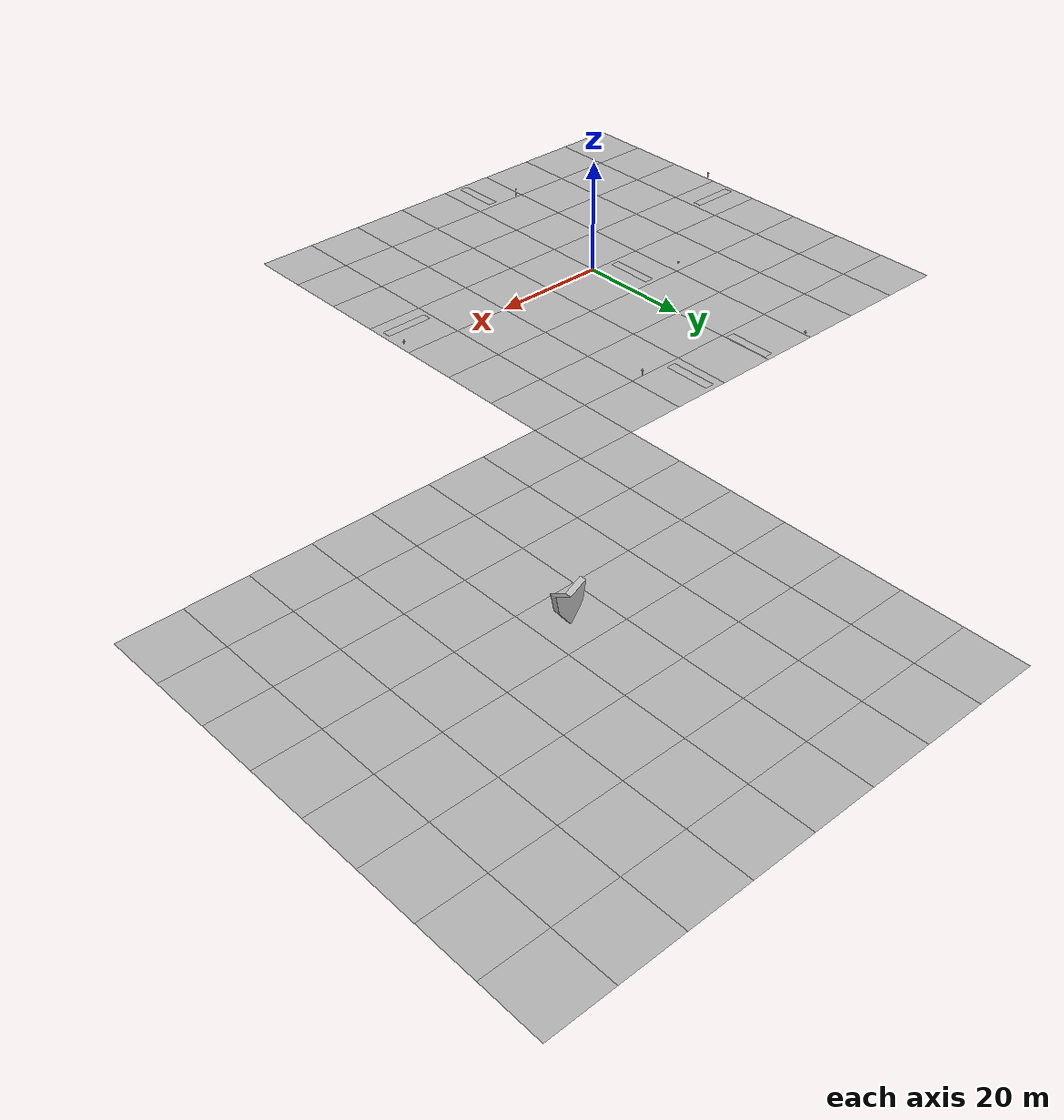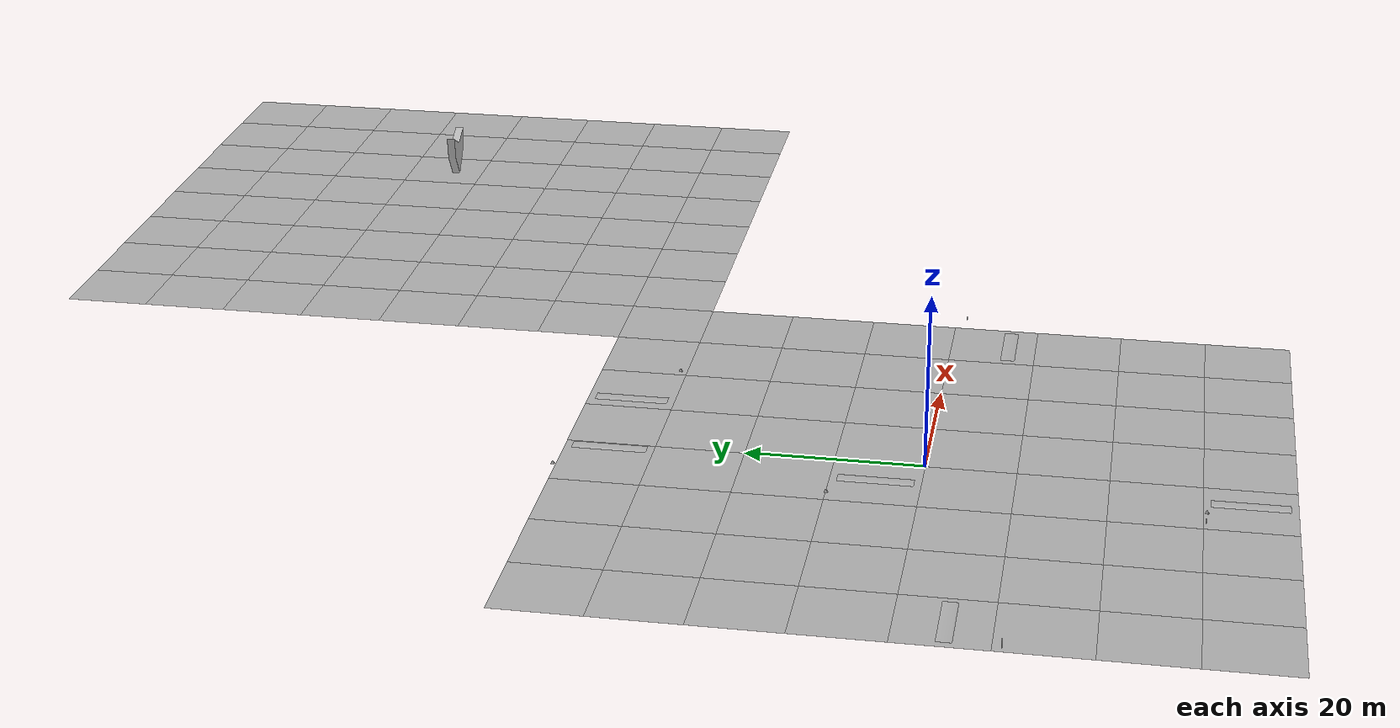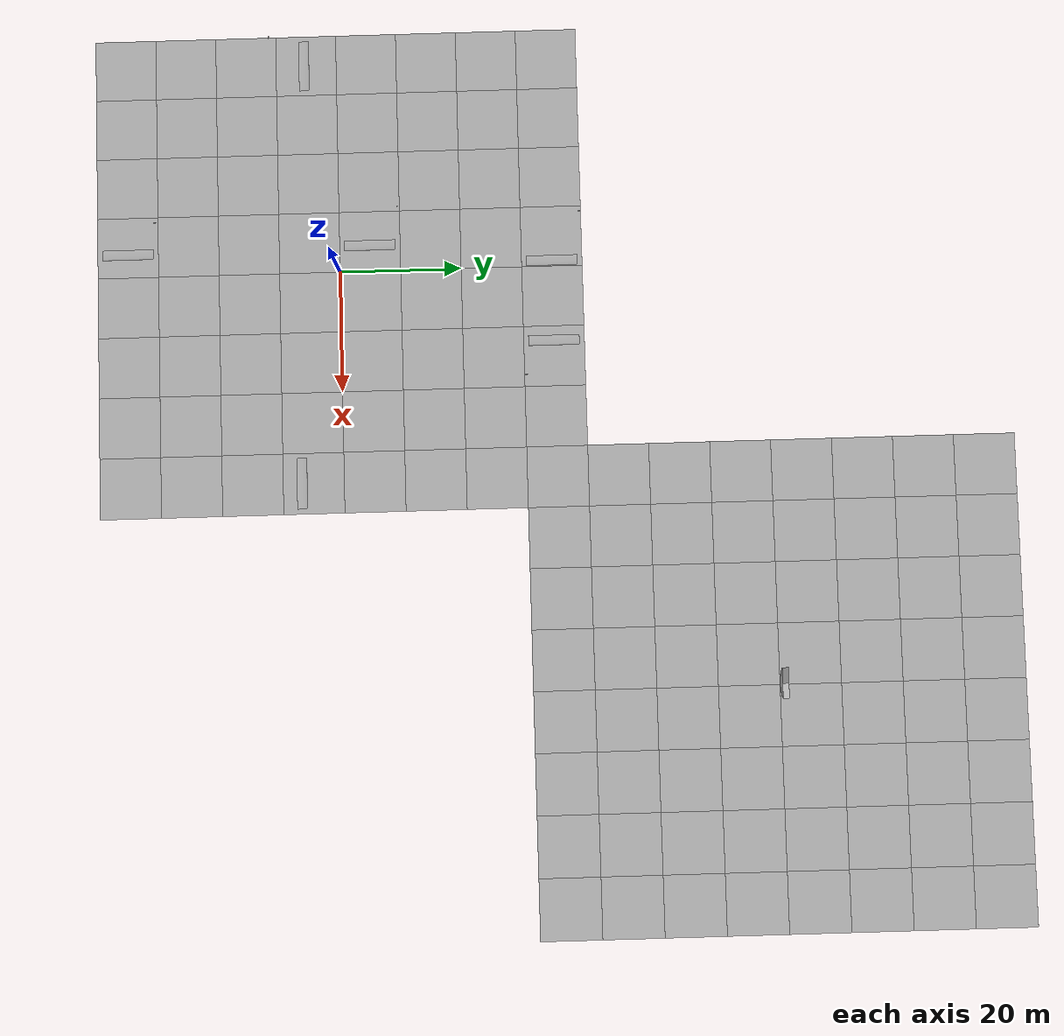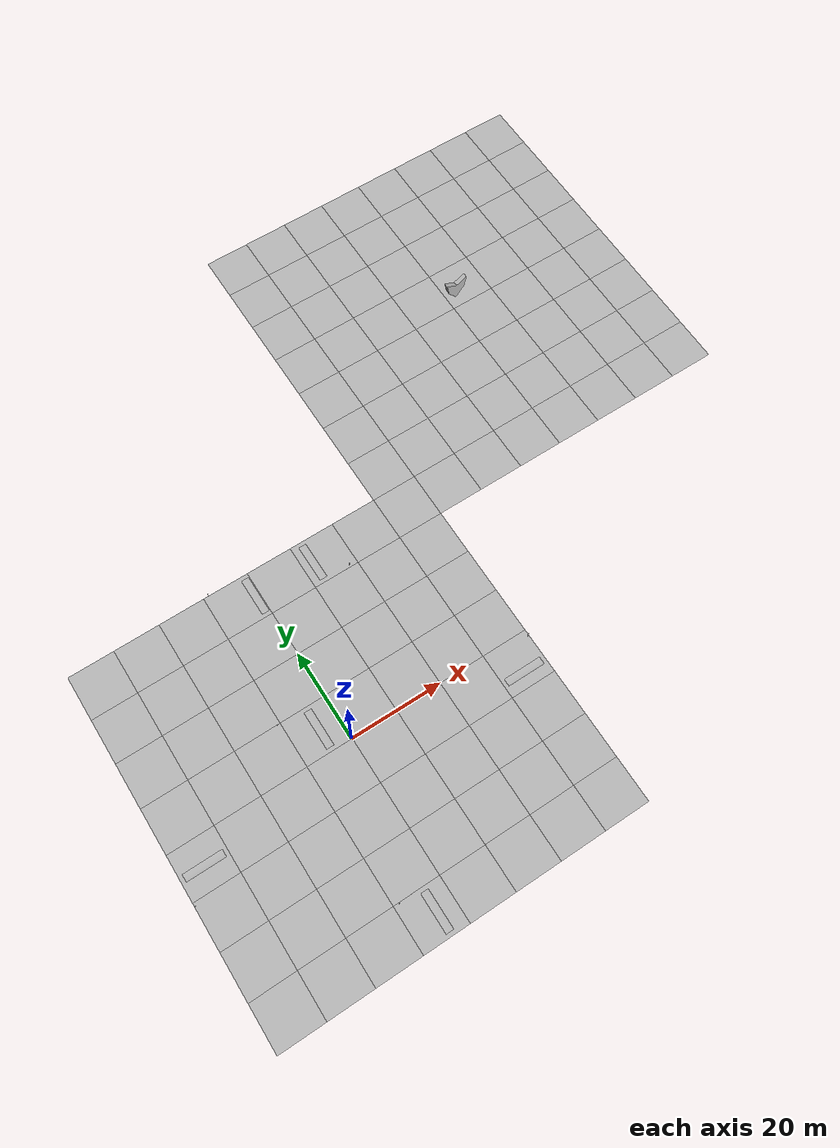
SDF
<sdf version="1.4">
 <world name="road test">
  <scene>
   <ambient>120 120 120 255</ambient>
   <sky><clouds><speed>12</speed></clouds><time>10:00</time></sky>
  </scene>
  <include>
   <name>Road Intersection1</name>
   <uri>model://road_intersection</uri>
   <pose>-35 -35 0 0 0 1.57</pose>
  </include>
  <include><name>Road Straight2</name><uri>model://road_straight</uri><pose>-35 -25 0 0 0 1.57</pose></include>
  <include><name>Road Straight3</name><uri>model://road_straight</uri><pose>-35 -15 0 0 0 1.57</pose></include>
  <include><name>Road Straight4</name><uri>model://road_straight</uri><pose>-35 -5 0 0 0 1.57</pose></include>
  <include>
   <name>Road Intersection2</name>
   <uri>model://road_intersection</uri>
   <pose>-35 5 0 0 0 1.57</pose>
  </include>
  <include><name>Road Straight5</name><uri>model://road_straight</uri><pose>-35 15 0 0 0 1.57</pose></include>
  <include><name>Road Straight6</name><uri>model://road_straight</uri><pose>-35 25 0 0 0 1.57</pose></include>
  <include>
   <name>Road Intersection3</name>
   <uri>model://road_intersection</uri>
   <pose>-35 35 0 0 0 1.57</pose>
  </include>
  <include><name>Road Straight7</name><uri>model://road_straight</uri><pose>-25 -35 0 0 0 0</pose></include>
  <include><name>Road Straight8</name><uri>model://road_straight</uri><pose>-25 5 0 0 0 0</pose></include>
  <include><name>Road Straight9</name><uri>model://road_straight</uri><pose>-25 35 0 0 0 0</pose></include>
  <include><name>Road Straight10</name><uri>model://road_straight</uri><pose>-15 -35 0 0 0 0</pose></include>
  <include><name>Road Straight11</name><uri>model://road_straight</uri><pose>-15 5 0 0 0 0</pose></include>
  <include><name>Road Straight12</name><uri>model://road_straight</uri><pose>-15 35 0 0 0 0</pose></include>
  <include><name>Road Straight13</name><uri>model://road_straight</uri><pose>-5 -35 0 0 0 0</pose></include>
  <include><name>Road Straight14</name><uri>model://road_straight</uri><pose>-5 5 0 0 0 0</pose></include>
  <include><name>Road Straight15</name><uri>model://road_straight</uri><pose>-5 35 0 0 0 0</pose></include>
  <include>
   <name>Road Intersection4</name>
   <uri>model://road_intersection</uri>
   <pose>5 -35 0 0 0 1.57</pose>
  </include>
  <include><name>Road Straight16</name><uri>model://road_straight</uri><pose>5 -25 0 0 0 1.57</pose></include>
  <include>
   <name>Road Intersection5</name>
   <uri>model://road_intersection</uri>
   <pose>5 -15 0 0 0 1.57</pose>
  </include>
  <include><name>Road Straight17</name><uri>model://road_straight</uri><pose>5 -5 0 0 0 1.57</pose></include>
  <include>
   <name>Road Intersection6</name>
   <uri>model://road_intersection</uri>
   <pose>5 5 0 0 0 1.57</pose>
  </include>
  <include><name>Road Straight18</name><uri>model://road_straight</uri><pose>5 15 0 0 0 1.57</pose></include>
  <include><name>Road Straight19</name><uri>model://road_straight</uri><pose>5 25 0 0 0 1.57</pose></include>
  <include>
   <name>Road Intersection7</name>
   <uri>model://road_intersection</uri>
   <pose>5 35 0 0 0 1.57</pose>
  </include>
  <include><name>Road Straight20</name><uri>model://road_straight</uri><pose>15 -35 0 0 0 0</pose></include>
  <include><name>Road Straight21</name><uri>model://road_straight</uri><pose>15 -15 0 0 0 0</pose></include>
  <include><name>Road Straight22</name><uri>model://road_straight</uri><pose>15 35 0 0 0 0</pose></include>
  <include><name>Road Straight23</name><uri>model://road_straight</uri><pose>25 -35 0 0 0 0</pose></include>
  <include><name>Road Straight24</name><uri>model://road_straight</uri><pose>25 -15 0 0 0 0</pose></include>
  <include><name>Road Straight25</name><uri>model://road_straight</uri><pose>25 35 0 0 0 0</pose></include>
  <include>
   <name>Road Intersection8</name>
   <uri>model://road_intersection</uri>
   <pose>35 -35 0 0 0 1.57</pose>
  </include>
  <include><name>Road Straight26</name><uri>model://road_straight</uri><pose>35 -25 0 0 0 1.57</pose></include>
  <include>
   <name>Road Intersection9</name>
   <uri>model://road_intersection</uri>
   <pose>35 -15 0 0 0 1.57</pose>
  </include>
  <include><name>Road Straight27</name><uri>model://road_straight</uri><pose>35 -5 0 0 0 1.57</pose></include>
  <include><name>Road Straight28</name><uri>model://road_straight</uri><pose>35 5 0 0 0 1.57</pose></include>
  <include><name>Road Straight29</name><uri>model://road_straight</uri><pose>35 15 0 0 0 1.57</pose></include>
  <include><name>Road Straight30</name><uri>model://road_straight</uri><pose>35 25 0 0 0 1.57</pose></include>
  <include>
   <name>Road Intersection10</name>
   <uri>model://road_intersection</uri>
   <pose>35 35 0 0 0 1.57</pose>
  </include>
  <include><name>Road Straight31</name><uri>model://road_straight</uri><pose>35 45 0 0 0 1.57</pose></include>
  <include><name>Road Straight32</name><uri>model://road_straight</uri><pose>35 55 0 0 0 1.57</pose></include>
  <include><name>Road Straight33</name><uri>model://road_straight</uri><pose>35 65 0 0 0 1.57</pose></include>
  <include><name>Road Straight34</name><uri>model://road_straight</uri><pose>35 75 0 0 0 1.57</pose></include>
  <include><name>Road Straight35</name><uri>model://road_straight</uri><pose>35 85 0 0 0 1.57</pose></include>
  <include><name>Road Straight36</name><uri>model://road_straight</uri><pose>35 95 0 0 0 1.57</pose></include>
  <include>
   <name>Road Intersection11</name>
   <uri>model://road_intersection</uri>
   <pose>35 105 0 0 0 1.57</pose>
  </include>
  <include><name>Road Straight37</name><uri>model://road_straight</uri><pose>45 35 0 0 0 0</pose></include>
  <include><name>Road Straight38</name><uri>model://road_straight</uri><pose>45 105 0 0 0 0</pose></include>
  <include><name>Road Straight39</name><uri>model://road_straight</uri><pose>55 35 0 0 0 0</pose></include>
  <include><name>Road Straight40</name><uri>model://road_straight</uri><pose>55 105 0 0 0 0</pose></include>
  <include><name>Road Straight41</name><uri>model://road_straight</uri><pose>65 35 0 0 0 0</pose></include>
  <include><name>Road Straight42</name><uri>model://road_straight</uri><pose>65 105 0 0 0 0</pose></include>
  <include><name>Road Straight43</name><uri>model://road_straight</uri><pose>75 35 0 0 0 0</pose></include>
  <include><name>Road Straight44</name><uri>model://road_straight</uri><pose>75 105 0 0 0 0</pose></include>
  <include><name>Road Straight45</name><uri>model://road_straight</uri><pose>85 35 0 0 0 0</pose></include>
  <include><name>Road Straight46</name><uri>model://road_straight</uri><pose>85 105 0 0 0 0</pose></include>
  <include><name>Road Straight47</name><uri>model://road_straight</uri><pose>95 35 0 0 0 0</pose></include>
  <include><name>Road Straight48</name><uri>model://road_straight</uri><pose>95 105 0 0 0 0</pose></include>
  <include>
   <name>Road Intersection12</name>
   <uri>model://road_intersection</uri>
   <pose>105 35 0 0 0 1.57</pose>
  </include>
  <include><name>Road Straight49</name><uri>model://road_straight</uri><pose>105 45 0 0 0 1.57</pose></include>
  <include><name>Road Straight50</name><uri>model://road_straight</uri><pose>105 55 0 0 0 1.57</pose></include>
  <include><name>Road Straight51</name><uri>model://road_straight</uri><pose>105 65 0 0 0 1.57</pose></include>
  <include><name>Road Straight52</name><uri>model://road_straight</uri><pose>105 75 0 0 0 1.57</pose></include>
  <include><name>Road Straight53</name><uri>model://road_straight</uri><pose>105 85 0 0 0 1.57</pose></include>
  <include><name>Road Straight54</name><uri>model://road_straight</uri><pose>105 95 0 0 0 1.57</pose></include>
  <include>
   <name>Road Intersection13</name>
   <uri>model://road_intersection</uri>
   <pose>105 105 0 0 0 1.57</pose>
  </include>
  <include><name>Grass Plane 1</name><uri>model://grass_plane</uri><pose>-25 -25 0 0 0 1.57</pose></include>
  <include><name>Grass Plane 2</name><uri>model://grass_plane</uri><pose>-25 -15 0 0 0 1.57</pose></include>
  <include><name>Grass Plane 3</name><uri>model://grass_plane</uri><pose>-25 -5 0 0 0 1.57</pose></include>
  <include><name>Grass Plane 4</name><uri>model://grass_plane</uri><pose>-25 15 0 0 0 1.57</pose></include>
  <include><name>Grass Plane 5</name><uri>model://grass_plane</uri><pose>-25 25 0 0 0 1.57</pose></include>
  <include><name>Grass Plane 6</name><uri>model://grass_plane</uri><pose>-15 -25 0 0 0 1.57</pose></include>
  <include><name>Grass Plane 7</name><uri>model://grass_plane</uri><pose>-15 -15 0 0 0 1.57</pose></include>
  <include><name>Grass Plane 8</name><uri>model://grass_plane</uri><pose>-15 -5 0 0 0 1.57</pose></include>
  <include><name>Grass Plane 9</name><uri>model://grass_plane</uri><pose>-15 15 0 0 0 1.57</pose></include>
  <include><name>Grass Plane 10</name><uri>model://grass_plane</uri><pose>-15 25 0 0 0 1.57</pose></include>
  <include><name>Grass Plane 11</name><uri>model://grass_plane</uri><pose>-5 -25 0 0 0 1.57</pose></include>
  <include><name>Grass Plane 12</name><uri>model://grass_plane</uri><pose>-5 -15 0 0 0 1.57</pose></include>
  <include><name>Grass Plane 13</name><uri>model://grass_plane</uri><pose>-5 -5 0 0 0 1.57</pose></include>
  <include><name>Grass Plane 14</name><uri>model://grass_plane</uri><pose>-5 15 0 0 0 1.57</pose></include>
  <include><name>Grass Plane 15</name><uri>model://grass_plane</uri><pose>-5 25 0 0 0 1.57</pose></include>
  <include><name>Grass Plane 16</name><uri>model://grass_plane</uri><pose>15 -25 0 0 0 1.57</pose></include>
  <include><name>Grass Plane 17</name><uri>model://grass_plane</uri><pose>15 -5 0 0 0 1.57</pose></include>
  <include><name>Grass Plane 18</name><uri>model://grass_plane</uri><pose>15 5 0 0 0 1.57</pose></include>
  <include><name>Grass Plane 19</name><uri>model://grass_plane</uri><pose>15 15 0 0 0 1.57</pose></include>
  <include><name>Grass Plane 20</name><uri>model://grass_plane</uri><pose>15 25 0 0 0 1.57</pose></include>
  <include><name>Grass Plane 21</name><uri>model://grass_plane</uri><pose>25 -25 0 0 0 1.57</pose></include>
  <include><name>Grass Plane 22</name><uri>model://grass_plane</uri><pose>25 -5 0 0 0 1.57</pose></include>
  <include><name>Grass Plane 23</name><uri>model://grass_plane</uri><pose>25 5 0 0 0 1.57</pose></include>
  <include><name>Grass Plane 24</name><uri>model://grass_plane</uri><pose>25 15 0 0 0 1.57</pose></include>
  <include><name>Grass Plane 25</name><uri>model://grass_plane</uri><pose>25 25 0 0 0 1.57</pose></include>
  <include><name>Grass Plane 26</name><uri>model://grass_plane</uri><pose>45 45 0 0 0 1.57</pose></include>
  <include><name>Grass Plane 27</name><uri>model://grass_plane</uri><pose>45 55 0 0 0 1.57</pose></include>
  <include><name>Grass Plane 28</name><uri>model://grass_plane</uri><pose>45 65 0 0 0 1.57</pose></include>
  <include><name>Grass Plane 29</name><uri>model://grass_plane</uri><pose>45 75 0 0 0 1.57</pose></include>
  <include><name>Grass Plane 30</name><uri>model://grass_plane</uri><pose>45 85 0 0 0 1.57</pose></include>
  <include><name>Grass Plane 31</name><uri>model://grass_plane</uri><pose>45 95 0 0 0 1.57</pose></include>
  <include><name>Grass Plane 32</name><uri>model://grass_plane</uri><pose>55 45 0 0 0 1.57</pose></include>
  <include><name>Grass Plane 33</name><uri>model://grass_plane</uri><pose>55 55 0 0 0 1.57</pose></include>
  <include><name>Grass Plane 34</name><uri>model://grass_plane</uri><pose>55 65 0 0 0 1.57</pose></include>
  <include><name>Grass Plane 35</name><uri>model://grass_plane</uri><pose>55 75 0 0 0 1.57</pose></include>
  <include><name>Grass Plane 36</name><uri>model://grass_plane</uri><pose>55 85 0 0 0 1.57</pose></include>
  <include><name>Grass Plane 37</name><uri>model://grass_plane</uri><pose>55 95 0 0 0 1.57</pose></include>
  <include><name>Grass Plane 38</name><uri>model://grass_plane</uri><pose>65 45 0 0 0 1.57</pose></include>
  <include><name>Grass Plane 39</name><uri>model://grass_plane</uri><pose>65 55 0 0 0 1.57</pose></include>
  <include><name>Grass Plane 40</name><uri>model://grass_plane</uri><pose>65 65 0 0 0 1.57</pose></include>
  <include><name>Grass Plane 41</name><uri>model://grass_plane</uri><pose>65 75 0 0 0 1.57</pose></include>
  <include><name>Grass Plane 42</name><uri>model://grass_plane</uri><pose>65 85 0 0 0 1.57</pose></include>
  <include><name>Grass Plane 43</name><uri>model://grass_plane</uri><pose>65 95 0 0 0 1.57</pose></include>
  <include><name>Grass Plane 44</name><uri>model://grass_plane</uri><pose>75 45 0 0 0 1.57</pose></include>
  <include><name>Grass Plane 45</name><uri>model://grass_plane</uri><pose>75 55 0 0 0 1.57</pose></include>
  <include><name>Grass Plane 46</name><uri>model://grass_plane</uri><pose>75 65 0 0 0 1.57</pose></include>
  <include><name>Grass Plane 47</name><uri>model://grass_plane</uri><pose>75 75 0 0 0 1.57</pose></include>
  <include><name>Grass Plane 48</name><uri>model://grass_plane</uri><pose>75 85 0 0 0 1.57</pose></include>
  <include><name>Grass Plane 49</name><uri>model://grass_plane</uri><pose>75 95 0 0 0 1.57</pose></include>
  <include><name>Grass Plane 50</name><uri>model://grass_plane</uri><pose>85 45 0 0 0 1.57</pose></include>
  <include><name>Grass Plane 51</name><uri>model://grass_plane</uri><pose>85 55 0 0 0 1.57</pose></include>
  <include><name>Grass Plane 52</name><uri>model://grass_plane</uri><pose>85 65 0 0 0 1.57</pose></include>
  <include><name>Grass Plane 53</name><uri>model://grass_plane</uri><pose>85 75 0 0 0 1.57</pose></include>
  <include><name>Grass Plane 54</name><uri>model://grass_plane</uri><pose>85 85 0 0 0 1.57</pose></include>
  <include><name>Grass Plane 55</name><uri>model://grass_plane</uri><pose>85 95 0 0 0 1.57</pose></include>
  <include><name>Grass Plane 56</name><uri>model://grass_plane</uri><pose>95 45 0 0 0 1.57</pose></include>
  <include><name>Grass Plane 57</name><uri>model://grass_plane</uri><pose>95 55 0 0 0 1.57</pose></include>
  <include><name>Grass Plane 58</name><uri>model://grass_plane</uri><pose>95 65 0 0 0 1.57</pose></include>
  <include><name>Grass Plane 59</name><uri>model://grass_plane</uri><pose>95 75 0 0 0 1.57</pose></include>
  <include><name>Grass Plane 60</name><uri>model://grass_plane</uri><pose>95 85 0 0 0 1.57</pose></include>
  <include><name>Grass Plane 61</name><uri>model://grass_plane</uri><pose>95 95 0 0 0 1.57</pose></include>
  <include name="manas"><static>false</static><pose>70 70 8 0 0 0</pose><uri>model://manas</uri></include>
  <include>
   <name>Speed Bump 1</name>
   <uri>model://speed_bump</uri>
   <pose>-0.960217 35.002 -0.028867 0 -0 0</pose>
  </include>
  <include>
   <name>Speed Bump 2</name>
   <uri>model://speed_bump</uri>
   <pose>12.4039 34.9998 -0.028867 0 -0 0</pose>
  </include>
  <include>
   <name>Speed Bump 3</name>
   <uri>model://speed_bump</uri>
   <pose>-35.000 -5.34197 -0.028867 0 -0 1.5708</pose>
  </include>
  <include>
   <name>Speed Bump 4</name>
   <uri>model://speed_bump</uri>
   <pose>34.9595 -6.88274 -0.028867 0 -0 1.5708</pose>
  </include>
  <include>
   <name>Speed Bump 5</name>
   <uri>model://speed_bump</uri>
   <pose>-4.33912 5.00567 -0.028867 0 -0 0</pose>
  </include>
  <include>
   <name>Speed Bump 6</name>
   <uri>model://speed_bump</uri>
   <pose>-3.82383 -34.9918 -0.028867 0 -0 0</pose>
  </include>
  <include>
   <name>Speed Bump Sign 1</name>
   <uri>model://speed_bump_sign</uri>
   <pose>-8.843940 39.753899 0 0 0 1.57</pose>
  </include>
  <include>
   <name>Speed Bump Sign 2</name>
   <uri>model://speed_bump_sign</uri>
   <pose>18.195101 30.306200 0 0 0 1.57</pose>
  </include>
  <include>
   <name>Speed Bump Sign 3</name>
   <uri>model://speed_bump_sign</uri>
   <pose>-10.686400 9.670940 0 0 0 1.57</pose>
  </include>
  <include>
   <name>Speed Bump Sign 4</name>
   <uri>model://speed_bump_sign</uri>
   <pose>39.730900 -1.389050 0 0 0 0</pose>
  </include>
  <include>
   <name>Speed Bump Sign 5</name>
   <uri>model://speed_bump_sign</uri>
   <pose>-39.648200 -11.004100 0 0 0 0</pose>
  </include>
  <include>
   <name>Speed Bump Sign 6</name>
   <uri>model://speed_bump_sign</uri>
   <pose>-8.846580 -30.300301 0 0 0 1.57</pose>
  </include>
  <include><uri>model://sun</uri></include>
 </world>
</sdf>

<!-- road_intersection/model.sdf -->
<sdf version='1.4'>
  <model name='road_intersection'>
    <static>true</static>
    <link name="road_intersection">
      <visual name="visual">
            <geometry>
                <mesh>
                    <uri>model://road_intersection/materials/meshes/road_intersection.dae</uri>
		            <scale>0.5 0.5 1.0</scale>
                </mesh>
            </geometry>
        </visual>
        <collision name="collision">
            <geometry>
                <mesh>
                    <uri>model://road_intersection/materials/meshes/road_intersection.dae</uri>
        		    <scale>0.5 0.5 1.0</scale>
                </mesh>
            </geometry>
            <surface>
                <friction>
                    <ode>
                        <mu>100</mu>
                        <mu2>50</mu2>
                    </ode>
                </friction>
            </surface>
        </collision>
    </link>
  </model>
</sdf>

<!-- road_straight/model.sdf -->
<sdf version='1.4'>
  <model name='road_straight'>
    <static>true</static>
    <link name="road_straight">
      <visual name="visual">
            <geometry>
                <mesh>
                    <uri>model://road_straight/materials/meshes/road_straight.dae</uri>
                    <scale>0.5 0.5 1.0</scale>
               </mesh>
            </geometry>
        </visual>
        <collision name="collision">
            <geometry>
                <mesh>
                    <uri>model://road_straight/materials/meshes/road_straight.dae</uri>
                    <scale>0.5 0.5 1.0</scale>
                </mesh>
            </geometry>
            <surface>
                <friction>
                    <ode>
                        <mu>100</mu>
                        <mu2>50</mu2>
                    </ode>
                </friction>
            </surface>
        </collision>
    </link>
  </model>
</sdf>

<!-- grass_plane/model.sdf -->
<sdf version='1.4'>
  <model name='grass_plane'>
    <static>true</static>
    <link name="grass_plane">
      <visual name="visual">
            <geometry>
                <mesh>
                    <uri>model://grass_plane/materials/meshes/grass_plane.dae</uri>
		    		<scale>0.5 0.5 1.0</scale>
                </mesh>
            </geometry>
        </visual>
        <collision name="collision">
            <geometry>
                <mesh>
                    <uri>model://grass_plane/materials/meshes/grass_plane.dae</uri>
		    		<scale>0.5 0.5 1.0</scale>
                </mesh>
            </geometry>
            <surface>
                <friction>
                    <ode>
                        <mu>100</mu>
                        <mu2>50</mu2>
                    </ode>
                </friction>
            </surface>
        </collision>
    </link>
  </model>
</sdf>

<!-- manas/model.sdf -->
<sdf version='1.4'>
  <model name='manas'>
    <static>true</static>
    <link name="manas">
      <visual name="visual">
            <geometry>
                <mesh>
                    <uri>model://manas/materials/meshes/manas.dae</uri>
		    	<scale>0.5 0.5 0.5</scale>
                </mesh>
            </geometry>
        </visual>
        <collision name="collision">
            <geometry>
                <mesh>
                    <uri>model://manas/materials/meshes/manas.dae</uri>
		    	<scale>0.5 0.5 0.5</scale>
                </mesh>
            </geometry>
        </collision>
    </link>
  </model>
</sdf>

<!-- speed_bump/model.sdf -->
<sdf version='1.4'>
  <model name='speed_bump'>
    <static>true</static>
    <link name="speed_bump">
      <visual name="visual">
            <geometry>
                <mesh>
                    <uri>model://speed_bump/materials/meshes/speed_bump.dae</uri>
		    		<scale>4.5 4.18 6</scale>
                </mesh>
            </geometry>
        </visual>
        <collision name="collision">
            <surface>
                <friction>
                    <ode>
                        <mu>100</mu>
                        <mu2>50</mu2>
                    </ode>
                </friction>
            </surface>
            <geometry>
                <mesh>
                    <uri>model://speed_bump/materials/meshes/speed_bump.dae</uri>
					<scale>4.5 4.18 6</scale>
                </mesh>
            </geometry>
        </collision>
    </link>
  </model>
</sdf>

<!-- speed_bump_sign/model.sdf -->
<sdf version='1.4'>
  <model name='speed_bump_sign'>
    <static>true</static>
    <link name="speed_bump_sign">
      <visual name="visual">
            <geometry>
                <mesh>
                    <uri>model://speed_bump_sign/materials/meshes/speed_bump_sign.dae</uri>
                    <scale>0.5 0.5 0.5</scale>
                </mesh>
            </geometry>
        </visual>
        <collision name="collision">
            <geometry>
                <mesh>
                    <uri>model://speed_bump_sign/materials/meshes/speed_bump_sign.dae</uri>
                    <scale>0.5 0.5 0.5</scale>
                </mesh>
            </geometry>
        </collision>
    </link>
  </model>
</sdf>
